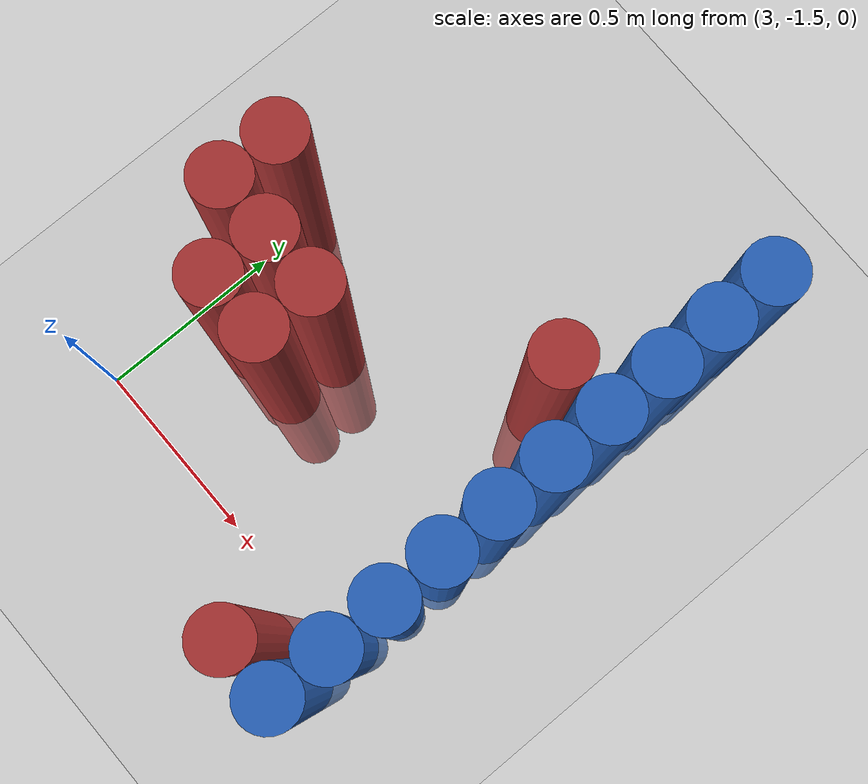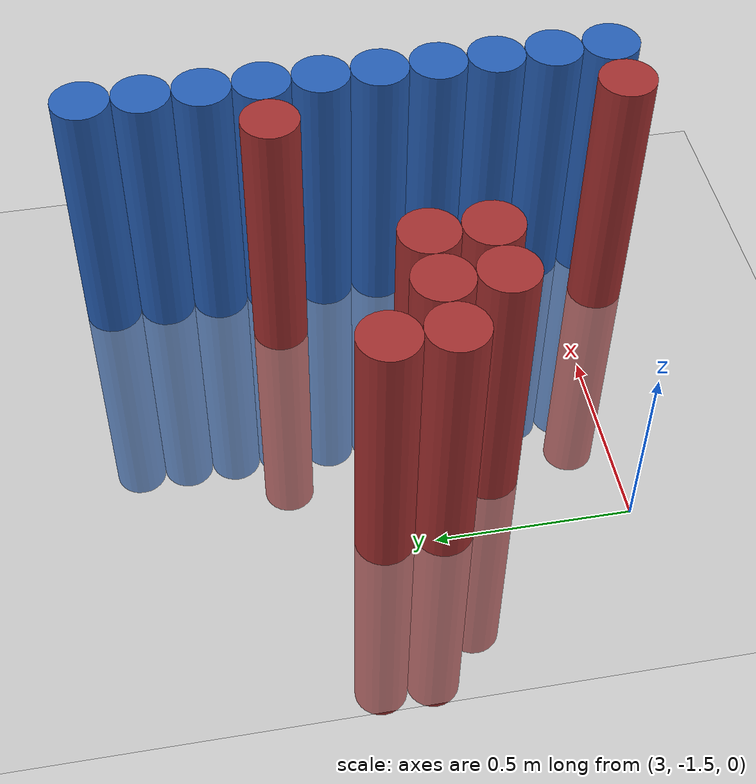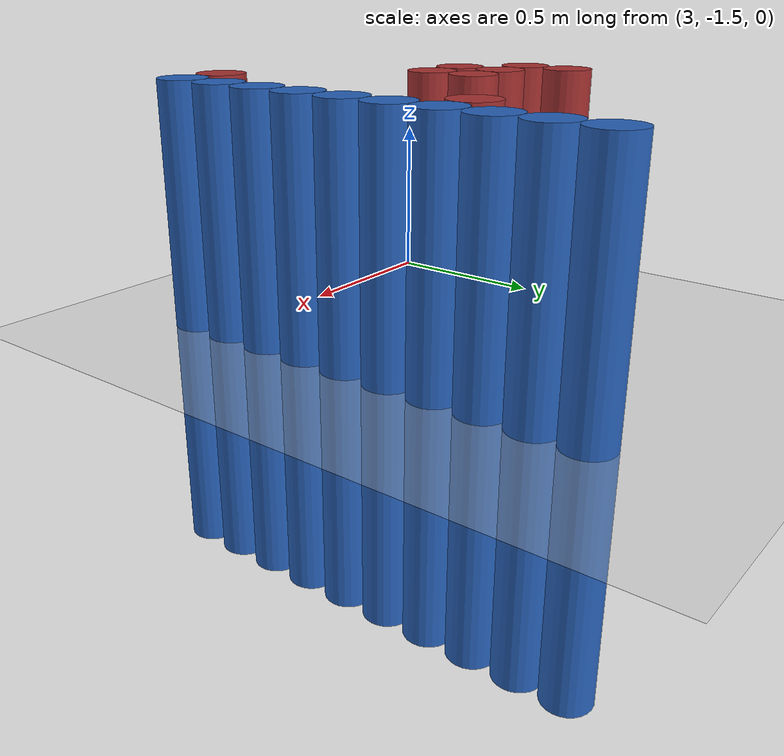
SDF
<sdf version="1.6">
 <world name="default">
  <model name="ground_plane">
   <static>1</static>
   <link name="link">
    <collision name="collision">
     <geometry><plane><normal>0 0 1</normal><size>100 100</size></plane></geometry>
     <surface><friction><ode><mu>100</mu><mu2>50</mu2></ode></friction></surface>
    </collision>
    <visual name="visual">
     <cast_shadows>0</cast_shadows>
     <geometry><plane><normal>0 0 1</normal><size>100 100</size></plane></geometry>
     <material>
      <script><uri>file://media/materials/scripts/gazebo.material</uri><name>Gazebo/Grey</name></script>
     </material>
    </visual>
   </link>
  </model>
  <model name="unit_cylinder_92">
   <static>1</static>
   <pose>3.925000 -1.625000 0.000000 0.000000 0.000000 0.000000</pose>
   <link name="link">
    <inertial>
     <mass>1</mass>
     <inertia><ixx>0.145833</ixx><ixy>0</ixy><ixz>0</ixz><iyy>0.145833</iyy><iyz>0</iyz><izz>0.125</izz></inertia>
    </inertial>
    <collision name="collision">
     <geometry><cylinder><radius>0.075000</radius><length>1.5</length></cylinder></geometry>
    </collision>
    <visual name="visual">
     <geometry><cylinder><radius>0.075000</radius><length>1.5</length></cylinder></geometry>
     <material>
      <ambient>0.152000 0.379000 0.720000 1</ambient>
      <diffuse>0.152000 0.379000 0.720000 1</diffuse>
     </material>
     <material>
      <script><name>Gazebo/Grey</name><uri>file://media/materials/scripts/gazebo.material</uri></script>
     </material>
    </visual>
   </link>
  </model>
  <model name="unit_cylinder_94">
   <static>1</static>
   <pose>3.925000 -1.475000 0.000000 0.000000 0.000000 0.000000</pose>
   <link name="link">
    <inertial>
     <mass>1</mass>
     <inertia><ixx>0.145833</ixx><ixy>0</ixy><ixz>0</ixz><iyy>0.145833</iyy><iyz>0</iyz><izz>0.125</izz></inertia>
    </inertial>
    <collision name="collision">
     <geometry><cylinder><radius>0.075000</radius><length>1.5</length></cylinder></geometry>
    </collision>
    <visual name="visual">
     <geometry><cylinder><radius>0.075000</radius><length>1.5</length></cylinder></geometry>
     <material>
      <ambient>0.152000 0.379000 0.720000 1</ambient>
      <diffuse>0.152000 0.379000 0.720000 1</diffuse>
     </material>
     <material>
      <script><name>Gazebo/Grey</name><uri>file://media/materials/scripts/gazebo.material</uri></script>
     </material>
    </visual>
   </link>
  </model>
  <model name="unit_cylinder_96">
   <static>1</static>
   <pose>3.925000 -1.325000 0.000000 0.000000 0.000000 0.000000</pose>
   <link name="link">
    <inertial>
     <mass>1</mass>
     <inertia><ixx>0.145833</ixx><ixy>0</ixy><ixz>0</ixz><iyy>0.145833</iyy><iyz>0</iyz><izz>0.125</izz></inertia>
    </inertial>
    <collision name="collision">
     <geometry><cylinder><radius>0.075000</radius><length>1.5</length></cylinder></geometry>
    </collision>
    <visual name="visual">
     <geometry><cylinder><radius>0.075000</radius><length>1.5</length></cylinder></geometry>
     <material>
      <ambient>0.152000 0.379000 0.720000 1</ambient>
      <diffuse>0.152000 0.379000 0.720000 1</diffuse>
     </material>
     <material>
      <script><name>Gazebo/Grey</name><uri>file://media/materials/scripts/gazebo.material</uri></script>
     </material>
    </visual>
   </link>
  </model>
  <model name="unit_cylinder_98">
   <static>1</static>
   <pose>3.925000 -1.175000 0.000000 0.000000 0.000000 0.000000</pose>
   <link name="link">
    <inertial>
     <mass>1</mass>
     <inertia><ixx>0.145833</ixx><ixy>0</ixy><ixz>0</ixz><iyy>0.145833</iyy><iyz>0</iyz><izz>0.125</izz></inertia>
    </inertial>
    <collision name="collision">
     <geometry><cylinder><radius>0.075000</radius><length>1.5</length></cylinder></geometry>
    </collision>
    <visual name="visual">
     <geometry><cylinder><radius>0.075000</radius><length>1.5</length></cylinder></geometry>
     <material>
      <ambient>0.152000 0.379000 0.720000 1</ambient>
      <diffuse>0.152000 0.379000 0.720000 1</diffuse>
     </material>
     <material>
      <script><name>Gazebo/Grey</name><uri>file://media/materials/scripts/gazebo.material</uri></script>
     </material>
    </visual>
   </link>
  </model>
  <model name="unit_cylinder_100">
   <static>1</static>
   <pose>3.925000 -1.025000 0.000000 0.000000 0.000000 0.000000</pose>
   <link name="link">
    <inertial>
     <mass>1</mass>
     <inertia><ixx>0.145833</ixx><ixy>0</ixy><ixz>0</ixz><iyy>0.145833</iyy><iyz>0</iyz><izz>0.125</izz></inertia>
    </inertial>
    <collision name="collision">
     <geometry><cylinder><radius>0.075000</radius><length>1.5</length></cylinder></geometry>
    </collision>
    <visual name="visual">
     <geometry><cylinder><radius>0.075000</radius><length>1.5</length></cylinder></geometry>
     <material>
      <ambient>0.152000 0.379000 0.720000 1</ambient>
      <diffuse>0.152000 0.379000 0.720000 1</diffuse>
     </material>
     <material>
      <script><name>Gazebo/Grey</name><uri>file://media/materials/scripts/gazebo.material</uri></script>
     </material>
    </visual>
   </link>
  </model>
  <model name="unit_cylinder_102">
   <static>1</static>
   <pose>3.925000 -0.875000 0.000000 0.000000 0.000000 0.000000</pose>
   <link name="link">
    <inertial>
     <mass>1</mass>
     <inertia><ixx>0.145833</ixx><ixy>0</ixy><ixz>0</ixz><iyy>0.145833</iyy><iyz>0</iyz><izz>0.125</izz></inertia>
    </inertial>
    <collision name="collision">
     <geometry><cylinder><radius>0.075000</radius><length>1.5</length></cylinder></geometry>
    </collision>
    <visual name="visual">
     <geometry><cylinder><radius>0.075000</radius><length>1.5</length></cylinder></geometry>
     <material>
      <ambient>0.152000 0.379000 0.720000 1</ambient>
      <diffuse>0.152000 0.379000 0.720000 1</diffuse>
     </material>
     <material>
      <script><name>Gazebo/Grey</name><uri>file://media/materials/scripts/gazebo.material</uri></script>
     </material>
    </visual>
   </link>
  </model>
  <model name="unit_cylinder_104">
   <static>1</static>
   <pose>3.925000 -0.725000 0.000000 0.000000 0.000000 0.000000</pose>
   <link name="link">
    <inertial>
     <mass>1</mass>
     <inertia><ixx>0.145833</ixx><ixy>0</ixy><ixz>0</ixz><iyy>0.145833</iyy><iyz>0</iyz><izz>0.125</izz></inertia>
    </inertial>
    <collision name="collision">
     <geometry><cylinder><radius>0.075000</radius><length>1.5</length></cylinder></geometry>
    </collision>
    <visual name="visual">
     <geometry><cylinder><radius>0.075000</radius><length>1.5</length></cylinder></geometry>
     <material>
      <ambient>0.152000 0.379000 0.720000 1</ambient>
      <diffuse>0.152000 0.379000 0.720000 1</diffuse>
     </material>
     <material>
      <script><name>Gazebo/Grey</name><uri>file://media/materials/scripts/gazebo.material</uri></script>
     </material>
    </visual>
   </link>
  </model>
  <model name="unit_cylinder_106">
   <static>1</static>
   <pose>3.925000 -0.575000 0.000000 0.000000 0.000000 0.000000</pose>
   <link name="link">
    <inertial>
     <mass>1</mass>
     <inertia><ixx>0.145833</ixx><ixy>0</ixy><ixz>0</ixz><iyy>0.145833</iyy><iyz>0</iyz><izz>0.125</izz></inertia>
    </inertial>
    <collision name="collision">
     <geometry><cylinder><radius>0.075000</radius><length>1.5</length></cylinder></geometry>
    </collision>
    <visual name="visual">
     <geometry><cylinder><radius>0.075000</radius><length>1.5</length></cylinder></geometry>
     <material>
      <ambient>0.152000 0.379000 0.720000 1</ambient>
      <diffuse>0.152000 0.379000 0.720000 1</diffuse>
     </material>
     <material>
      <script><name>Gazebo/Grey</name><uri>file://media/materials/scripts/gazebo.material</uri></script>
     </material>
    </visual>
   </link>
  </model>
  <model name="unit_cylinder_108">
   <static>1</static>
   <pose>3.925000 -0.425000 0.000000 0.000000 0.000000 0.000000</pose>
   <link name="link">
    <inertial>
     <mass>1</mass>
     <inertia><ixx>0.145833</ixx><ixy>0</ixy><ixz>0</ixz><iyy>0.145833</iyy><iyz>0</iyz><izz>0.125</izz></inertia>
    </inertial>
    <collision name="collision">
     <geometry><cylinder><radius>0.075000</radius><length>1.5</length></cylinder></geometry>
    </collision>
    <visual name="visual">
     <geometry><cylinder><radius>0.075000</radius><length>1.5</length></cylinder></geometry>
     <material>
      <ambient>0.152000 0.379000 0.720000 1</ambient>
      <diffuse>0.152000 0.379000 0.720000 1</diffuse>
     </material>
     <material>
      <script><name>Gazebo/Grey</name><uri>file://media/materials/scripts/gazebo.material</uri></script>
     </material>
    </visual>
   </link>
  </model>
  <model name="unit_cylinder_110">
   <static>1</static>
   <pose>3.925000 -0.275000 0.000000 0.000000 0.000000 0.000000</pose>
   <link name="link">
    <inertial>
     <mass>1</mass>
     <inertia><ixx>0.145833</ixx><ixy>0</ixy><ixz>0</ixz><iyy>0.145833</iyy><iyz>0</iyz><izz>0.125</izz></inertia>
    </inertial>
    <collision name="collision">
     <geometry><cylinder><radius>0.075000</radius><length>1.5</length></cylinder></geometry>
    </collision>
    <visual name="visual">
     <geometry><cylinder><radius>0.075000</radius><length>1.5</length></cylinder></geometry>
     <material>
      <ambient>0.152000 0.379000 0.720000 1</ambient>
      <diffuse>0.152000 0.379000 0.720000 1</diffuse>
     </material>
     <material>
      <script><name>Gazebo/Grey</name><uri>file://media/materials/scripts/gazebo.material</uri></script>
     </material>
    </visual>
   </link>
  </model>
  <model name="unit_cylinder_440">
   <static>1</static>
   <pose>3.025000 -1.025000 0.000000 0.000000 0.000000 0.000000</pose>
   <link name="link">
    <inertial>
     <mass>1</mass>
     <inertia><ixx>0.145833</ixx><ixy>0</ixy><ixz>0</ixz><iyy>0.145833</iyy><iyz>0</iyz><izz>0.125</izz></inertia>
    </inertial>
    <collision name="collision">
     <geometry><cylinder><radius>0.075000</radius><length>1.5</length></cylinder></geometry>
    </collision>
    <visual name="visual">
     <geometry><cylinder><radius>0.075000</radius><length>1.5</length></cylinder></geometry>
     <material>
      <ambient>0.648000 0.192000 0.192000 1</ambient>
      <diffuse>0.648000 0.192000 0.192000 1</diffuse>
     </material>
     <material>
      <script><name>Gazebo/Grey</name><uri>file://media/materials/scripts/gazebo.material</uri></script>
     </material>
    </visual>
   </link>
  </model>
  <model name="unit_cylinder_441">
   <static>1</static>
   <pose>3.025000 -0.875000 0.000000 0.000000 0.000000 0.000000</pose>
   <link name="link">
    <inertial>
     <mass>1</mass>
     <inertia><ixx>0.145833</ixx><ixy>0</ixy><ixz>0</ixz><iyy>0.145833</iyy><iyz>0</iyz><izz>0.125</izz></inertia>
    </inertial>
    <collision name="collision">
     <geometry><cylinder><radius>0.075000</radius><length>1.5</length></cylinder></geometry>
    </collision>
    <visual name="visual">
     <geometry><cylinder><radius>0.075000</radius><length>1.5</length></cylinder></geometry>
     <material>
      <ambient>0.648000 0.192000 0.192000 1</ambient>
      <diffuse>0.648000 0.192000 0.192000 1</diffuse>
     </material>
     <material>
      <script><name>Gazebo/Grey</name><uri>file://media/materials/scripts/gazebo.material</uri></script>
     </material>
    </visual>
   </link>
  </model>
  <model name="unit_cylinder_444">
   <static>1</static>
   <pose>3.175000 -1.175000 0.000000 0.000000 0.000000 0.000000</pose>
   <link name="link">
    <inertial>
     <mass>1</mass>
     <inertia><ixx>0.145833</ixx><ixy>0</ixy><ixz>0</ixz><iyy>0.145833</iyy><iyz>0</iyz><izz>0.125</izz></inertia>
    </inertial>
    <collision name="collision">
     <geometry><cylinder><radius>0.075000</radius><length>1.5</length></cylinder></geometry>
    </collision>
    <visual name="visual">
     <geometry><cylinder><radius>0.075000</radius><length>1.5</length></cylinder></geometry>
     <material>
      <ambient>0.648000 0.192000 0.192000 1</ambient>
      <diffuse>0.648000 0.192000 0.192000 1</diffuse>
     </material>
     <material>
      <script><name>Gazebo/Grey</name><uri>file://media/materials/scripts/gazebo.material</uri></script>
     </material>
    </visual>
   </link>
  </model>
  <model name="unit_cylinder_445">
   <static>1</static>
   <pose>3.175000 -1.025000 0.000000 0.000000 0.000000 0.000000</pose>
   <link name="link">
    <inertial>
     <mass>1</mass>
     <inertia><ixx>0.145833</ixx><ixy>0</ixy><ixz>0</ixz><iyy>0.145833</iyy><iyz>0</iyz><izz>0.125</izz></inertia>
    </inertial>
    <collision name="collision">
     <geometry><cylinder><radius>0.075000</radius><length>1.5</length></cylinder></geometry>
    </collision>
    <visual name="visual">
     <geometry><cylinder><radius>0.075000</radius><length>1.5</length></cylinder></geometry>
     <material>
      <ambient>0.648000 0.192000 0.192000 1</ambient>
      <diffuse>0.648000 0.192000 0.192000 1</diffuse>
     </material>
     <material>
      <script><name>Gazebo/Grey</name><uri>file://media/materials/scripts/gazebo.material</uri></script>
     </material>
    </visual>
   </link>
  </model>
  <model name="unit_cylinder_451">
   <static>1</static>
   <pose>3.325000 -1.175000 0.000000 0.000000 0.000000 0.000000</pose>
   <link name="link">
    <inertial>
     <mass>1</mass>
     <inertia><ixx>0.145833</ixx><ixy>0</ixy><ixz>0</ixz><iyy>0.145833</iyy><iyz>0</iyz><izz>0.125</izz></inertia>
    </inertial>
    <collision name="collision">
     <geometry><cylinder><radius>0.075000</radius><length>1.5</length></cylinder></geometry>
    </collision>
    <visual name="visual">
     <geometry><cylinder><radius>0.075000</radius><length>1.5</length></cylinder></geometry>
     <material>
      <ambient>0.648000 0.192000 0.192000 1</ambient>
      <diffuse>0.648000 0.192000 0.192000 1</diffuse>
     </material>
     <material>
      <script><name>Gazebo/Grey</name><uri>file://media/materials/scripts/gazebo.material</uri></script>
     </material>
    </visual>
   </link>
  </model>
  <model name="unit_cylinder_452">
   <static>1</static>
   <pose>3.325000 -1.025000 0.000000 0.000000 0.000000 0.000000</pose>
   <link name="link">
    <inertial>
     <mass>1</mass>
     <inertia><ixx>0.145833</ixx><ixy>0</ixy><ixz>0</ixz><iyy>0.145833</iyy><iyz>0</iyz><izz>0.125</izz></inertia>
    </inertial>
    <collision name="collision">
     <geometry><cylinder><radius>0.075000</radius><length>1.5</length></cylinder></geometry>
    </collision>
    <visual name="visual">
     <geometry><cylinder><radius>0.075000</radius><length>1.5</length></cylinder></geometry>
     <material>
      <ambient>0.648000 0.192000 0.192000 1</ambient>
      <diffuse>0.648000 0.192000 0.192000 1</diffuse>
     </material>
     <material>
      <script><name>Gazebo/Grey</name><uri>file://media/materials/scripts/gazebo.material</uri></script>
     </material>
    </visual>
   </link>
  </model>
  <model name="unit_cylinder_476">
   <static>1</static>
   <pose>3.775000 -1.625000 0.000000 0.000000 0.000000 0.000000</pose>
   <link name="link">
    <inertial>
     <mass>1</mass>
     <inertia><ixx>0.145833</ixx><ixy>0</ixy><ixz>0</ixz><iyy>0.145833</iyy><iyz>0</iyz><izz>0.125</izz></inertia>
    </inertial>
    <collision name="collision">
     <geometry><cylinder><radius>0.075000</radius><length>1.5</length></cylinder></geometry>
    </collision>
    <visual name="visual">
     <geometry><cylinder><radius>0.075000</radius><length>1.5</length></cylinder></geometry>
     <material>
      <ambient>0.648000 0.192000 0.192000 1</ambient>
      <diffuse>0.648000 0.192000 0.192000 1</diffuse>
     </material>
     <material>
      <script><name>Gazebo/Grey</name><uri>file://media/materials/scripts/gazebo.material</uri></script>
     </material>
    </visual>
   </link>
  </model>
  <model name="unit_cylinder_477">
   <static>1</static>
   <pose>3.775000 -0.725000 0.000000 0.000000 0.000000 0.000000</pose>
   <link name="link">
    <inertial>
     <mass>1</mass>
     <inertia><ixx>0.145833</ixx><ixy>0</ixy><ixz>0</ixz><iyy>0.145833</iyy><iyz>0</iyz><izz>0.125</izz></inertia>
    </inertial>
    <collision name="collision">
     <geometry><cylinder><radius>0.075000</radius><length>1.5</length></cylinder></geometry>
    </collision>
    <visual name="visual">
     <geometry><cylinder><radius>0.075000</radius><length>1.5</length></cylinder></geometry>
     <material>
      <ambient>0.648000 0.192000 0.192000 1</ambient>
      <diffuse>0.648000 0.192000 0.192000 1</diffuse>
     </material>
     <material>
      <script><name>Gazebo/Grey</name><uri>file://media/materials/scripts/gazebo.material</uri></script>
     </material>
    </visual>
   </link>
  </model>
  <model name="unit_cylinder_496">
   <static>1</static>
   <pose>3.925000 -1.625000 0.000000 0.000000 0.000000 0.000000</pose>
   <link name="link">
    <inertial>
     <mass>1</mass>
     <inertia><ixx>0.145833</ixx><ixy>0</ixy><ixz>0</ixz><iyy>0.145833</iyy><iyz>0</iyz><izz>0.125</izz></inertia>
    </inertial>
    <collision name="collision">
     <geometry><cylinder><radius>0.075000</radius><length>1.5</length></cylinder></geometry>
    </collision>
    <visual name="visual">
     <geometry><cylinder><radius>0.075000</radius><length>1.5</length></cylinder></geometry>
     <material>
      <ambient>0.152000 0.379000 0.720000 1</ambient>
      <diffuse>0.152000 0.379000 0.720000 1</diffuse>
     </material>
     <material>
      <script><name>Gazebo/Grey</name><uri>file://media/materials/scripts/gazebo.material</uri></script>
     </material>
    </visual>
   </link>
  </model>
  <model name="unit_cylinder_497">
   <static>1</static>
   <pose>3.925000 -1.475000 0.000000 0.000000 0.000000 0.000000</pose>
   <link name="link">
    <inertial>
     <mass>1</mass>
     <inertia><ixx>0.145833</ixx><ixy>0</ixy><ixz>0</ixz><iyy>0.145833</iyy><iyz>0</iyz><izz>0.125</izz></inertia>
    </inertial>
    <collision name="collision">
     <geometry><cylinder><radius>0.075000</radius><length>1.5</length></cylinder></geometry>
    </collision>
    <visual name="visual">
     <geometry><cylinder><radius>0.075000</radius><length>1.5</length></cylinder></geometry>
     <material>
      <ambient>0.152000 0.379000 0.720000 1</ambient>
      <diffuse>0.152000 0.379000 0.720000 1</diffuse>
     </material>
     <material>
      <script><name>Gazebo/Grey</name><uri>file://media/materials/scripts/gazebo.material</uri></script>
     </material>
    </visual>
   </link>
  </model>
  <model name="unit_cylinder_498">
   <static>1</static>
   <pose>3.925000 -1.325000 0.000000 0.000000 0.000000 0.000000</pose>
   <link name="link">
    <inertial>
     <mass>1</mass>
     <inertia><ixx>0.145833</ixx><ixy>0</ixy><ixz>0</ixz><iyy>0.145833</iyy><iyz>0</iyz><izz>0.125</izz></inertia>
    </inertial>
    <collision name="collision">
     <geometry><cylinder><radius>0.075000</radius><length>1.5</length></cylinder></geometry>
    </collision>
    <visual name="visual">
     <geometry><cylinder><radius>0.075000</radius><length>1.5</length></cylinder></geometry>
     <material>
      <ambient>0.152000 0.379000 0.720000 1</ambient>
      <diffuse>0.152000 0.379000 0.720000 1</diffuse>
     </material>
     <material>
      <script><name>Gazebo/Grey</name><uri>file://media/materials/scripts/gazebo.material</uri></script>
     </material>
    </visual>
   </link>
  </model>
  <model name="unit_cylinder_499">
   <static>1</static>
   <pose>3.925000 -1.175000 0.000000 0.000000 0.000000 0.000000</pose>
   <link name="link">
    <inertial>
     <mass>1</mass>
     <inertia><ixx>0.145833</ixx><ixy>0</ixy><ixz>0</ixz><iyy>0.145833</iyy><iyz>0</iyz><izz>0.125</izz></inertia>
    </inertial>
    <collision name="collision">
     <geometry><cylinder><radius>0.075000</radius><length>1.5</length></cylinder></geometry>
    </collision>
    <visual name="visual">
     <geometry><cylinder><radius>0.075000</radius><length>1.5</length></cylinder></geometry>
     <material>
      <ambient>0.152000 0.379000 0.720000 1</ambient>
      <diffuse>0.152000 0.379000 0.720000 1</diffuse>
     </material>
     <material>
      <script><name>Gazebo/Grey</name><uri>file://media/materials/scripts/gazebo.material</uri></script>
     </material>
    </visual>
   </link>
  </model>
  <model name="unit_cylinder_500">
   <static>1</static>
   <pose>3.925000 -1.025000 0.000000 0.000000 0.000000 0.000000</pose>
   <link name="link">
    <inertial>
     <mass>1</mass>
     <inertia><ixx>0.145833</ixx><ixy>0</ixy><ixz>0</ixz><iyy>0.145833</iyy><iyz>0</iyz><izz>0.125</izz></inertia>
    </inertial>
    <collision name="collision">
     <geometry><cylinder><radius>0.075000</radius><length>1.5</length></cylinder></geometry>
    </collision>
    <visual name="visual">
     <geometry><cylinder><radius>0.075000</radius><length>1.5</length></cylinder></geometry>
     <material>
      <ambient>0.152000 0.379000 0.720000 1</ambient>
      <diffuse>0.152000 0.379000 0.720000 1</diffuse>
     </material>
     <material>
      <script><name>Gazebo/Grey</name><uri>file://media/materials/scripts/gazebo.material</uri></script>
     </material>
    </visual>
   </link>
  </model>
  <model name="unit_cylinder_501">
   <static>1</static>
   <pose>3.925000 -0.875000 0.000000 0.000000 0.000000 0.000000</pose>
   <link name="link">
    <inertial>
     <mass>1</mass>
     <inertia><ixx>0.145833</ixx><ixy>0</ixy><ixz>0</ixz><iyy>0.145833</iyy><iyz>0</iyz><izz>0.125</izz></inertia>
    </inertial>
    <collision name="collision">
     <geometry><cylinder><radius>0.075000</radius><length>1.5</length></cylinder></geometry>
    </collision>
    <visual name="visual">
     <geometry><cylinder><radius>0.075000</radius><length>1.5</length></cylinder></geometry>
     <material>
      <ambient>0.152000 0.379000 0.720000 1</ambient>
      <diffuse>0.152000 0.379000 0.720000 1</diffuse>
     </material>
     <material>
      <script><name>Gazebo/Grey</name><uri>file://media/materials/scripts/gazebo.material</uri></script>
     </material>
    </visual>
   </link>
  </model>
  <model name="unit_cylinder_502">
   <static>1</static>
   <pose>3.925000 -0.725000 0.000000 0.000000 0.000000 0.000000</pose>
   <link name="link">
    <inertial>
     <mass>1</mass>
     <inertia><ixx>0.145833</ixx><ixy>0</ixy><ixz>0</ixz><iyy>0.145833</iyy><iyz>0</iyz><izz>0.125</izz></inertia>
    </inertial>
    <collision name="collision">
     <geometry><cylinder><radius>0.075000</radius><length>1.5</length></cylinder></geometry>
    </collision>
    <visual name="visual">
     <geometry><cylinder><radius>0.075000</radius><length>1.5</length></cylinder></geometry>
     <material>
      <ambient>0.152000 0.379000 0.720000 1</ambient>
      <diffuse>0.152000 0.379000 0.720000 1</diffuse>
     </material>
     <material>
      <script><name>Gazebo/Grey</name><uri>file://media/materials/scripts/gazebo.material</uri></script>
     </material>
    </visual>
   </link>
  </model>
  <model name="unit_cylinder_503">
   <static>1</static>
   <pose>3.925000 -0.575000 0.000000 0.000000 0.000000 0.000000</pose>
   <link name="link">
    <inertial>
     <mass>1</mass>
     <inertia><ixx>0.145833</ixx><ixy>0</ixy><ixz>0</ixz><iyy>0.145833</iyy><iyz>0</iyz><izz>0.125</izz></inertia>
    </inertial>
    <collision name="collision">
     <geometry><cylinder><radius>0.075000</radius><length>1.5</length></cylinder></geometry>
    </collision>
    <visual name="visual">
     <geometry><cylinder><radius>0.075000</radius><length>1.5</length></cylinder></geometry>
     <material>
      <ambient>0.152000 0.379000 0.720000 1</ambient>
      <diffuse>0.152000 0.379000 0.720000 1</diffuse>
     </material>
     <material>
      <script><name>Gazebo/Grey</name><uri>file://media/materials/scripts/gazebo.material</uri></script>
     </material>
    </visual>
   </link>
  </model>
  <model name="unit_cylinder_504">
   <static>1</static>
   <pose>3.925000 -0.425000 0.000000 0.000000 0.000000 0.000000</pose>
   <link name="link">
    <inertial>
     <mass>1</mass>
     <inertia><ixx>0.145833</ixx><ixy>0</ixy><ixz>0</ixz><iyy>0.145833</iyy><iyz>0</iyz><izz>0.125</izz></inertia>
    </inertial>
    <collision name="collision">
     <geometry><cylinder><radius>0.075000</radius><length>1.5</length></cylinder></geometry>
    </collision>
    <visual name="visual">
     <geometry><cylinder><radius>0.075000</radius><length>1.5</length></cylinder></geometry>
     <material>
      <ambient>0.152000 0.379000 0.720000 1</ambient>
      <diffuse>0.152000 0.379000 0.720000 1</diffuse>
     </material>
     <material>
      <script><name>Gazebo/Grey</name><uri>file://media/materials/scripts/gazebo.material</uri></script>
     </material>
    </visual>
   </link>
  </model>
 </world>
</sdf>
